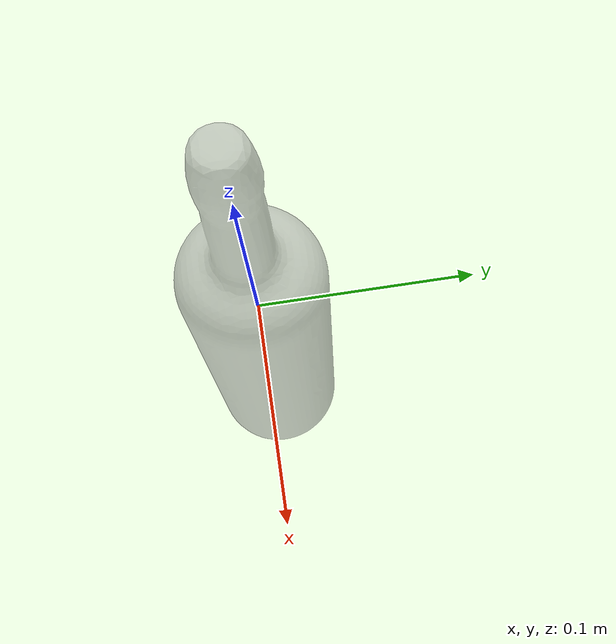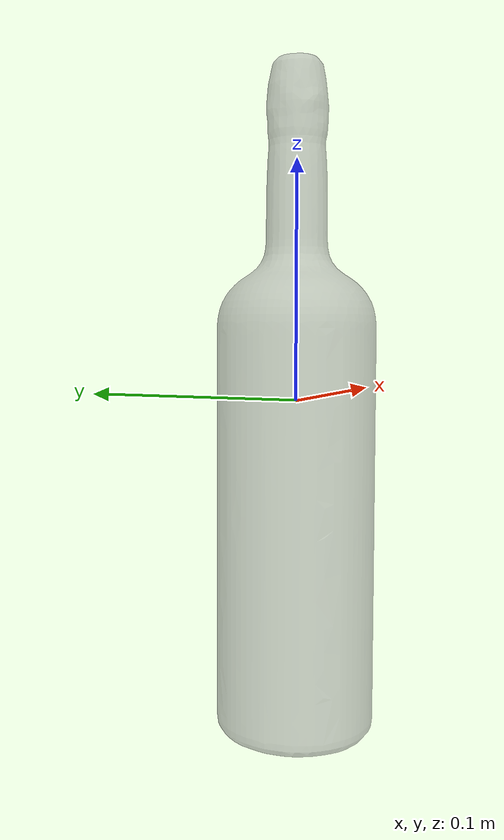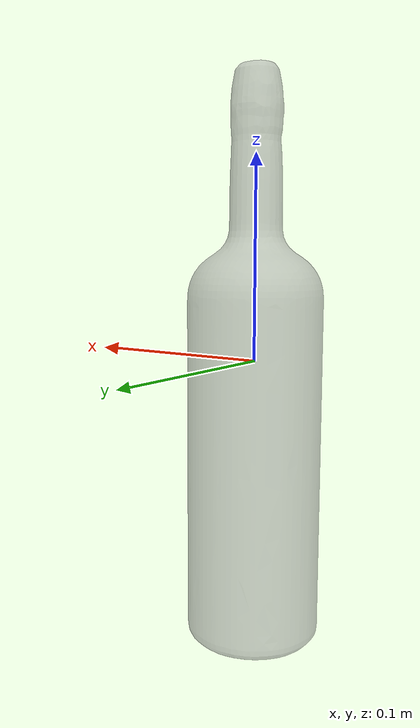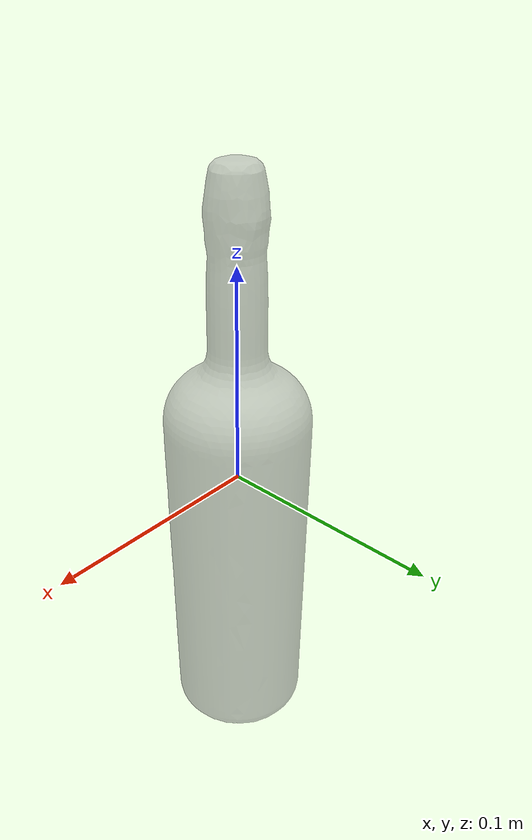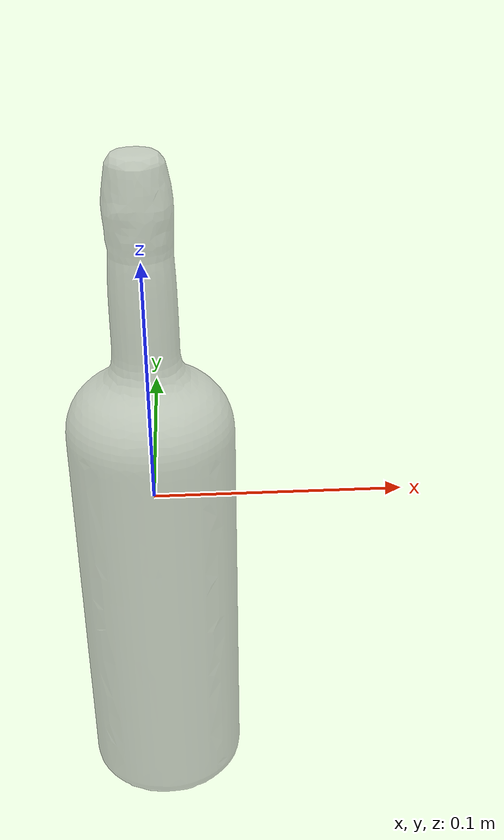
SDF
<?xml version='1.0'?>
<sdf version='1.4'>
  <model name="object">
    <link name='link'>
      <pose>0.0 0 0 0 0 0</pose>
      <inertial>
        <mass>1.35836</mass>
        <inertia>
          <ixx>0.00568872</ixx>
          <ixy>0</ixy>
          <ixz>0</ixz>
          <iyy>0.00568888</iyy>
          <iyz>0</iyz>
          <izz>0.00068172</izz>
        </inertia>
      </inertial>
      <collision name='c_bp_009'>
        <geometry>
          <mesh>
            <scale>1 1 1</scale>
            <uri>model://bottle_poisson_009/mesh/bottle_poisson_009.dae</uri>
          </mesh>
        </geometry>
        <surface>
          <contact>
            <ode>
              <kp>100000</kp>
              <kd>100</kd>
              <max_vel>1000.0</max_vel>
            </ode>
          </contact>
        </surface>
      </collision>

      <visual name='v_bp_009'>
        <geometry>
          <mesh>
            <scale>1 1 1</scale>
            <uri>model://bottle_poisson_009/mesh/bottle_poisson_009.dae</uri>
          </mesh>
        </geometry>
        <material>
          <script>
            <name>Gazebo/GreyTransparent</name>
            <uri>file://media/materials/scripts/gazebo.material</uri>
          </script>
        </material>
      </visual>

      <velocity_decay>
        <linear>0.0004</linear>
        <angular>0.0004</angular>
      </velocity_decay>
    </link>
  </model>
</sdf>
